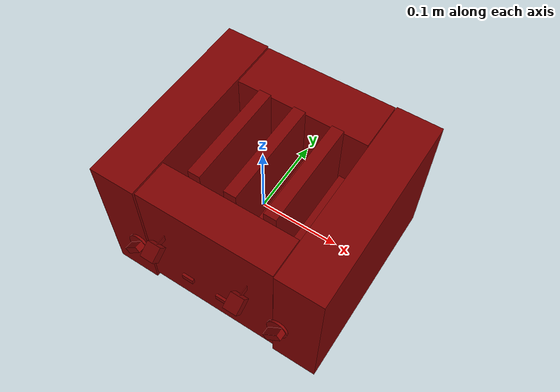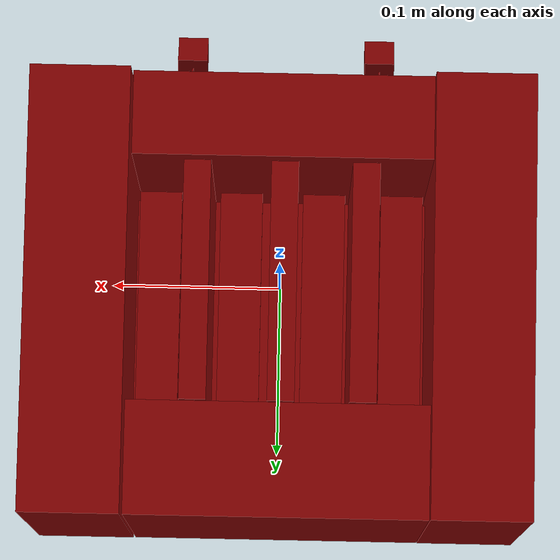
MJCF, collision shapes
<?xml version='1.0' encoding='UTF-8'?>
<mujoco model="model">
  <option timestep="0.002" gravity="0.0 0.0 -9.81"/>
  <compiler angle="radian"/>
  <asset>
    <mesh file="visuals/sideL_button_cancel.obj" name="sideL_button_cancel_vis"/>
    <mesh file="visuals/sideL_knob_doneness.obj" name="sideL_knob_doneness_vis"/>
    <mesh file="visuals/sideL_lever.obj" name="sideL_lever_vis"/>
    <mesh file="visuals/sideR_button_cancel.obj" name="sideR_button_cancel_vis"/>
    <mesh file="visuals/sideR_knob_doneness.obj" name="sideR_knob_doneness_vis"/>
    <mesh file="visuals/sideR_lever.obj" name="sideR_lever_vis"/>
    <mesh file="visuals/Body001.obj" name="Body001_vis"/>
    <texture file="visuals/T_BC001.png" name="Body001_material" type="2d"/>
    <material name="Body001_material" rgba="1 1 1 1.0" texture="Body001_material" shininess="0.1" specular="3"/>
    <texture file="visuals/T_BC001.png" name="sideL_button_cancel_material" type="2d"/>
    <material name="sideL_button_cancel_material" rgba="1 1 1 1.0" texture="sideL_button_cancel_material" shininess="0.1" specular="5"/>
    <texture file="visuals/T_BC001.png" name="sideL_knob_doneness_material" type="2d"/>
    <material name="sideL_knob_doneness_material" rgba="1 1 1 1.0" texture="sideL_knob_doneness_material" shininess="0.1" specular="5"/>
    <texture file="visuals/T_BC001.png" name="sideL_lever_material" type="2d"/>
    <material name="sideL_lever_material" rgba="1 1 1 1.0" texture="sideL_lever_material" shininess="0.1" specular="5"/>
    <texture file="visuals/T_BC001.png" name="sideR_button_cancel_material" type="2d"/>
    <material name="sideR_button_cancel_material" rgba="1 1 1 1.0" texture="sideR_button_cancel_material" shininess="0.1" specular="5"/>
    <texture file="visuals/T_BC001.png" name="sideR_knob_doneness_material" type="2d"/>
    <material name="sideR_knob_doneness_material" rgba="1 1 1 1.0" texture="sideR_knob_doneness_material" shininess="0.1" specular="5"/>
    <texture file="visuals/T_BC001.png" name="sideR_lever_material" type="2d"/>
    <material name="sideR_lever_material" rgba="1 1 1 1.0" texture="sideR_lever_material" shininess="0.1" specular="5"/>
  </asset>
  <default>
    <default class="visual">
      <geom conaffinity="0" contype="0" group="1" type="mesh"/>
    </default>
    <default class="collision_1">
      <geom group="0" rgba="0.5 0 0 0.5" solref="0.004 1" solimp="0.998 0.998 0.001"/>
    </default>
    <default class="collision_2">
      <geom group="0" rgba="0.5 0 0 0.5" solref="0.004 1" solimp="0.998 0.998 0.001"/>
    </default>
    <default class="collision_3">
      <geom group="0" rgba="0.5 0 0 0.5" solref="0.004 1" solimp="0.998 0.998 0.001"/>
    </default>
    <default class="collision_4">
      <geom group="0" rgba="0.5 0 0 0.5" solref="0.004 1" solimp="0.998 0.998 0.001"/>
    </default>
    <default class="collision_5">
      <geom group="0" rgba="0.5 0 0 0.5" solref="0.004 1" solimp="0.998 0.998 0.001"/>
    </default>
    <default class="collision_6">
      <geom group="0" rgba="0.5 0 0 0.5" solref="0.004 1" solimp="0.998 0.998 0.001"/>
    </default>
    <default class="collision_7">
      <geom group="0" rgba="0.5 0 0 0.5" solref="0.004 1" solimp="0.998 0.998 0.001"/>
    </default>
    <default class="spawn">
      <geom group="0" rgba="1 1 1 0.5" contype="0" conaffinity="0"/>
      <site group="0" rgba="1 1 1 0.5"/>
    </default>
    <default class="region">
      <geom group="1" conaffinity="0" contype="0" rgba="0 1 0 0" mass="0"/>
    </default>
  </default>
  <worldbody>
    <body>
      <body name="object">
        <geom mesh="Body001_vis" type="mesh" solimp="0.998 0.998 0.001" solref="0.001 1" friction="0.95 0.3 0.1" class="visual" material="Body001_material"/>
        <geom type="box" pos="-0.11744601 0.01470146 -0.00068324" size="0.0292451661080122 0.1295139193534851 0.09570308774709702" quat="1.0 0.0 0.0 0.0" class="collision_1"/>
        <geom type="box" pos="0.11774322 0.01470146 -0.00068324" size="0.0292451661080122 0.1295139193534851 0.09570308774709702" quat="1.0 0.0 0.0 0.0" class="collision_1"/>
        <geom type="box" pos="-0.00031791 0.11135861 -0.00068324" size="0.08727206289768219 0.03285679966211319 0.09343433380126953" quat="1.0 0.0 0.0 0.0" class="collision_1"/>
        <geom type="box" pos="-0.04867577 0.00897448 0.02578669" size="0.00784926675260067 0.06927337497472763 0.07138879597187042" quat="1.0 0.0 0.0 0.0" class="collision_1"/>
        <geom type="box" pos="-0.00177031 0.00897448 0.02578669" size="0.00784926675260067 0.06927337497472763 0.07138879597187042" quat="1.0 0.0 0.0 0.0" class="collision_1"/>
        <geom type="box" pos="0.04860677 0.00897448 0.02578669" size="0.00784926675260067 0.06927337497472763 0.07138879597187042" quat="1.0 0.0 0.0 0.0" class="collision_1"/>
        <geom type="box" pos="-0.00031791 -0.08826738 0.00246432" size="0.08727206289768219 0.0243641696870327 0.09028677642345428" quat="1.0 0.0 0.0 0.0" class="collision_1"/>
        <geom type="box" pos="-0.00024117 0.00579175 -0.06723562" size="0.08895101398229599 0.06605091691017151 0.021633507683873177" quat="1.0 0.0 0.0 0.0" class="collision_1"/>
        <body name="sideL_button_cancel">
          <joint axis="0.0 1.0 0.0" pos="-0.02663126 -0.11929510 -0.02725106" limited="true" name="sideL_button_cancel_joint" range="0.0 0.0015" type="slide" damping="1" frictionloss="1" armature=".01" stiffness="4" springref="-1"/>
          <geom mesh="sideL_button_cancel_vis" type="mesh" solimp="0.998 0.998 0.001" solref="0.001 1" friction="0.95 0.3 0.1" class="visual" material="sideL_button_cancel_material"/>
          <geom class="collision_2" type="box" pos="-0.02663126 -0.11929510 -0.02725106" size="0.007671647239476442 0.0017126075690612197 0.003935616929084063" quat="1.0 0.0 0.0 0.0" name="sideL_button_cancel_main"/>
        </body>
        <body name="sideL_knob_doneness">
          <joint axis="0.0 0.9942089915275574 -0.10746294260025024" pos="-0.09738655 -0.12359664 -0.01158004" limited="true" name="sideL_knob_doneness_joint" range="0.0 4.537856055185257" type="hinge" damping="0.05" frictionloss="0.75" armature="1"/>
          <geom mesh="sideL_knob_doneness_vis" type="mesh" solimp="0.998 0.998 0.001" solref="0.001 1" friction="0.95 0.3 0.1" class="visual" material="sideL_knob_doneness_material"/>
          <geom type="cylinder" pos="-0.09740571 -0.11962685 -0.01199528" size="0.013089415617287159 0.0015820475528016686" quat="0.7476466298103333 0.6640967726707458 0.0 0.0" class="collision_3" friction="100 0.5 0.01"/>
          <geom class="collision_3" type="box" pos="-0.09691171 -0.12647632 -0.01085710" size="0.004070065449923277 0.005558236036449671 0.011412317864596844" quat="0.9140874743461609 -0.05409756302833557 0.40119051933288574 -0.023743243888020515" name="sideL_knob_doneness_main" friction="100 0.5 0.01"/>
        </body>
        <body name="sideL_lever">
          <joint axis="0.0 0.0 -1.0" pos="-0.05592623 -0.12004391 0.03217939" limited="true" name="sideL_lever_joint" range="0.0 0.057999999999999996" type="slide" damping="1" frictionloss="1" armature=".1" stiffness="3" springref="-0.5"/>
          <geom class="region" name="reg_sideL_slotL" type="box" pos="-0.07238056500000001 0.00985275 0.09287896500000001" size="0.013537415000000004 0.06604573 0.076000085"/>
          <geom class="region" name="reg_sideL_slotR" type="box" pos="-0.025227569999999998 0.00985275 0.09287896500000001" size="0.013332609999999998 0.06604573 0.076000085"/>
          <geom mesh="sideL_lever_vis" type="mesh" solimp="0.998 0.998 0.001" solref="0.001 1" friction="0.95 0.3 0.1" class="visual" material="sideL_lever_material"/>
          <geom class="collision_4" type="box" pos="-0.05642418 -0.13429910 0.03093704" size="0.008749963715672493 0.009631842374801636 0.006989365443587303" quat="0.9567050337791443 0.2910592555999756 0.0 0.0" name="sideL_lever_handle"/>
          <geom type="box" pos="-0.05624584 -0.12052740 0.03185640" size="0.0004481362411752343 0.0067475950345396996 0.0047934409230947495" quat="1.0 0.0 0.0 0.0" class="collision_4"/>
          <geom class="collision_4" type="box" pos="-0.02523943 0.01014058 0.01667021" size="0.01249999925494194 0.06499972939491272 0.0011213053949177265" quat="1.0 0.0 0.0 0.0" name="sideL_slotR_floor"/>
          <geom class="collision_4" type="box" pos="-0.07159302 0.01014058 0.01667021" size="0.01249999925494194 0.06499999761581421 0.0011213058605790138" quat="1.0 0.0 0.0 0.0" name="sideL_slotL_floor"/>
        </body>
        <body name="sideR_button_cancel">
          <joint axis="0.0 1.0 0.0" pos="0.02165436 -0.11929510 -0.02725106" limited="true" name="sideR_button_cancel_joint" range="0.0 0.0015" type="slide" damping="1" frictionloss="1" armature=".01" stiffness="4" springref="-1"/>
          <geom mesh="sideR_button_cancel_vis" type="mesh" solimp="0.998 0.998 0.001" solref="0.001 1" friction="0.95 0.3 0.1" class="visual" material="sideR_button_cancel_material"/>
          <geom class="collision_5" type="box" pos="0.02153988 -0.11929510 -0.02725106" size="0.007671647239476442 0.0017126075690612197 0.003935616929084063" quat="1.0 0.0 0.0 0.0" name="sideR_button_cancel_main"/>
        </body>
        <body name="sideR_knob_doneness">
          <joint axis="0.0 0.9942089915275574 -0.10746294260025024" pos="0.09725814 -0.12463751 -0.01194656" limited="true" name="sideR_knob_doneness_joint" range="0.0 4.537856055185257" type="hinge" damping="0.05" frictionloss="0.75" armature="1"/>
          <geom mesh="sideR_knob_doneness_vis" type="mesh" solimp="0.998 0.998 0.001" solref="0.001 1" friction="0.95 0.3 0.1" class="visual" material="sideR_knob_doneness_material"/>
          <geom type="cylinder" pos="0.09726955 -0.11962685 -0.01251626" size="0.013089415617287159 0.0015820475528016686" quat="0.7476466298103333 0.6640967726707458 0.0 0.0" class="collision_6" friction="100 0.5 0.01"/>
          <geom class="collision_6" type="box" pos="0.09776355 -0.12647632 -0.01137808" size="0.004070065449923277 0.005558236036449671 0.011412317864596844" quat="0.9140874743461609 -0.05409756302833557 0.40119051933288574 -0.023743243888020515" name="sideR_knob_doneness_main" friction="100 0.5 0.01"/>
        </body>
        <body name="sideR_lever">
          <joint axis="0.0 0.0 -1.0" pos="0.05441137 -0.12062193 0.03217940" limited="true" name="sideR_lever_joint" range="0.0 0.057999999999999996" type="slide" damping="1" frictionloss="1" armature=".1" stiffness="3" springref="-0.5"/>
          <geom class="region" name="reg_sideR_slotL" type="box" pos="0.02324418 0.00985275 0.09287896500000001" size="0.01529807 0.06604573 0.076000085"/>
          <geom class="region" name="reg_sideR_slotR" type="box" pos="0.072671685 0.00985275 0.09287896500000001" size="0.014062144999999998 0.06604573 0.076000085"/>
          <geom mesh="sideR_lever_vis" type="mesh" solimp="0.998 0.998 0.001" solref="0.001 1" friction="0.95 0.3 0.1" class="visual" material="sideR_lever_material"/>
          <geom type="box" pos="0.05466140 -0.12052740 0.03185640" size="0.0004481362411752343 0.0067475950345396996 0.0047934409230947495" quat="1.0 0.0 0.0 0.0" class="collision_7"/>
          <geom class="collision_7" type="box" pos="0.05448306 -0.13429910 0.03093704" size="0.008749963715672493 0.009631842374801636 0.006989365443587303" quat="0.9567050337791443 0.2910592555999756 0.0 0.0" name="sideR_lever_handle"/>
          <geom class="collision_7" type="box" pos="0.07204089 0.01014058 0.01667021" size="0.01249999925494194 0.06500079482793808 0.0011213042307645082" quat="1.0 0.0 0.0 0.0" name="sideR_slotR_floor"/>
          <geom class="collision_7" type="box" pos="0.02395991 0.01014058 0.01667021" size="0.012499889358878136 0.06499999761581421 0.0011213048128411174" quat="1.0 0.0 0.0 0.0" name="sideR_slotL_floor"/>
        </body>
        <geom class="region" name="reg_main" type="box" pos="0.0 0.012108034999999996 7.246999999999809e-05" size="0.14846444 0.134476765 0.09843779"/>
      </body>
    </body>
  </worldbody>
  <actuator>
    <motor name="sideL_button_cancel_joint_actuator" joint="sideL_button_cancel_joint" gear="0.5"/>
    <motor name="sideL_knob_doneness_joint_actuator" joint="sideL_knob_doneness_joint" gear="0.5"/>
    <motor name="sideL_lever_joint_actuator" joint="sideL_lever_joint" gear="0.5"/>
    <motor name="sideR_button_cancel_joint_actuator" joint="sideR_button_cancel_joint" gear="0.5"/>
    <motor name="sideR_knob_doneness_joint_actuator" joint="sideR_knob_doneness_joint" gear="0.5"/>
    <motor name="sideR_lever_joint_actuator" joint="sideR_lever_joint" gear="0.5"/>
  </actuator>
</mujoco>
